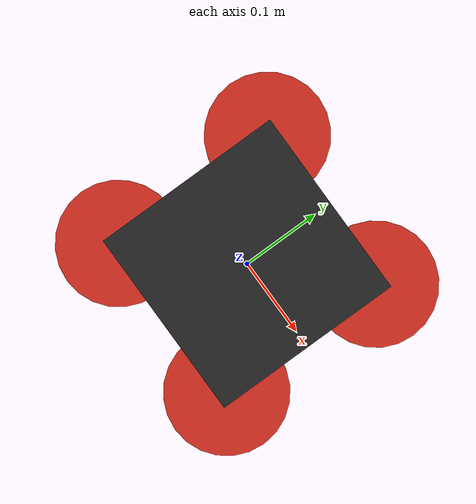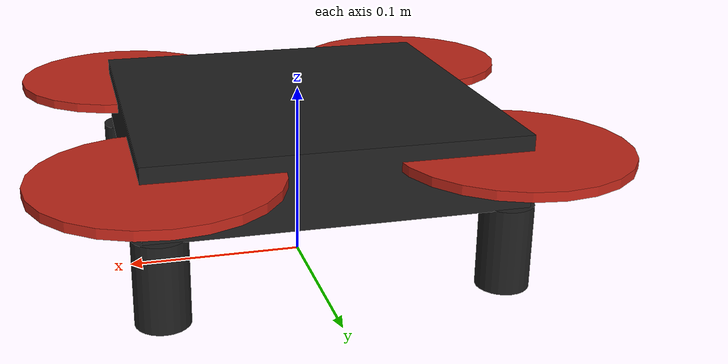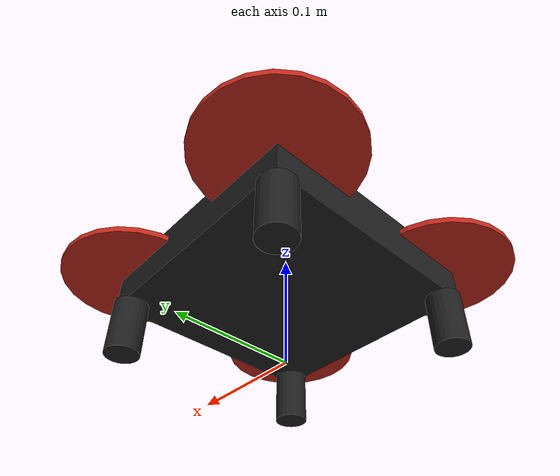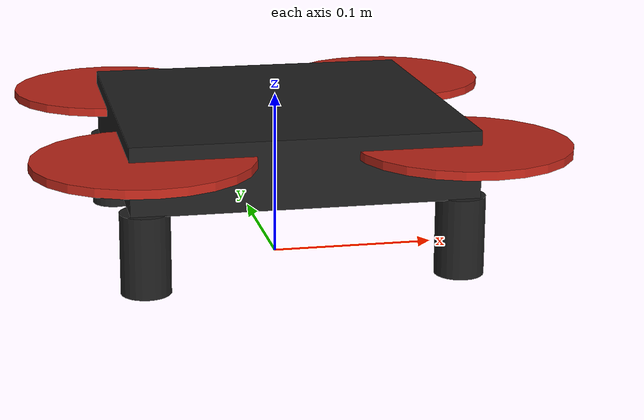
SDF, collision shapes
<?xml version="1.0" encoding="UTF-8"?>
<sdf version="1.9">
  <model name="dd24">
    <pose>0 0 0.06 0 0 0</pose>
    <link name="base_link">
      <inertial>
        <pose>0 0 0.010 0 0 0</pose>
        <mass>1.76</mass>
        <inertia><ixx>0.0082</ixx><ixy>0</ixy><ixz>0</ixz><iyy>0.0099</iyy><iyz>0</iyz><izz>0.0158</izz></inertia>
      </inertial>
      <visual name="bottom_plate">
        <pose>0 0 0 0 0 0</pose>
        <geometry><mesh><uri>model://dd24/meshes/DD24_BottomPlate_GPIO_X_STL.stl</uri><scale>0.001 0.001 0.001</scale></mesh></geometry>
        <material><ambient>0.12 0.12 0.12 1</ambient><diffuse>0.12 0.12 0.12 1</diffuse></material>
      </visual>
      <visual name="top_plate">
        <pose>0 0 0.035 0 0 0</pose>
        <geometry><mesh><uri>model://dd24/meshes/DD24_TopPlate_GPIO_X_STL.stl</uri><scale>0.001 0.001 0.001</scale></mesh></geometry>
        <material><ambient>0.12 0.12 0.12 1</ambient><diffuse>0.12 0.12 0.12 1</diffuse></material>
      </visual>
      <visual name="raspberry_pi">
        <pose>0.005 0 0.046 0 0 0</pose>
        <geometry><box><size>0.085 0.056 0.017</size></box></geometry>
        <material><ambient>0.10 0.45 0.20 1</ambient><diffuse>0.10 0.45 0.20 1</diffuse></material>
      </visual>
      <visual name="hat">
        <pose>0.012 0 0.0595 0 0 0</pose>
        <geometry><box><size>0.065 0.050 0.010</size></box></geometry>
        <material><ambient>1.0 0.65 0.1 1</ambient><diffuse>1.0 0.65 0.1 1</diffuse></material>
      </visual>
      <visual name="battery">
        <pose>-0.05 0 -0.022 0 0 0</pose>
        <geometry><box><size>0.075 0.035 0.034</size></box></geometry>
        <material><ambient>0.15 0.25 0.6 1</ambient><diffuse>0.15 0.25 0.6 1</diffuse></material>
      </visual>
      <visual name="leg_0">
        <pose>0.091 -0.091 -0.0025 1.5708 0 0</pose>
        <geometry><mesh><uri>model://dd24/meshes/DD24_Landing_Gear_STL.stl</uri><scale>0.001 0.001093 0.001</scale></mesh></geometry>
        <material><ambient>0.05 0.05 0.05 1</ambient><diffuse>0.05 0.05 0.05 1</diffuse></material>
      </visual>
      <visual name="leg_1">
        <pose>-0.091 0.091 -0.0025 1.5708 0 0</pose>
        <geometry><mesh><uri>model://dd24/meshes/DD24_Landing_Gear_STL.stl</uri><scale>0.001 0.001093 0.001</scale></mesh></geometry>
        <material><ambient>0.05 0.05 0.05 1</ambient><diffuse>0.05 0.05 0.05 1</diffuse></material>
      </visual>
      <visual name="leg_2">
        <pose>0.091 0.091 -0.0025 1.5708 0 0</pose>
        <geometry><mesh><uri>model://dd24/meshes/DD24_Landing_Gear_STL.stl</uri><scale>0.001 0.001093 0.001</scale></mesh></geometry>
        <material><ambient>0.05 0.05 0.05 1</ambient><diffuse>0.05 0.05 0.05 1</diffuse></material>
      </visual>
      <visual name="leg_3">
        <pose>-0.091 -0.091 -0.0025 1.5708 0 0</pose>
        <geometry><mesh><uri>model://dd24/meshes/DD24_Landing_Gear_STL.stl</uri><scale>0.001 0.001093 0.001</scale></mesh></geometry>
        <material><ambient>0.05 0.05 0.05 1</ambient><diffuse>0.05 0.05 0.05 1</diffuse></material>
      </visual>
      <collision name="body_collision">
        <pose>0 0 0.017 0 0 0</pose>
        <geometry><box><size>0.20 0.20 0.040</size></box></geometry>
      </collision>
      <collision name="leg_0_collision">
        <pose>0.091 -0.091 -0.026 0 0 0</pose>
        <geometry><cylinder><radius>0.0144</radius><length>0.047</length></cylinder></geometry>
        <surface><friction><ode><mu>0.8</mu><mu2>0.8</mu2></ode></friction></surface>
      </collision>
      <collision name="leg_1_collision">
        <pose>-0.091 0.091 -0.026 0 0 0</pose>
        <geometry><cylinder><radius>0.0144</radius><length>0.047</length></cylinder></geometry>
        <surface><friction><ode><mu>0.8</mu><mu2>0.8</mu2></ode></friction></surface>
      </collision>
      <collision name="leg_2_collision">
        <pose>0.091 0.091 -0.026 0 0 0</pose>
        <geometry><cylinder><radius>0.0144</radius><length>0.047</length></cylinder></geometry>
        <surface><friction><ode><mu>0.8</mu><mu2>0.8</mu2></ode></friction></surface>
      </collision>
      <collision name="leg_3_collision">
        <pose>-0.091 -0.091 -0.026 0 0 0</pose>
        <geometry><cylinder><radius>0.0144</radius><length>0.047</length></cylinder></geometry>
        <surface><friction><ode><mu>0.8</mu><mu2>0.8</mu2></ode></friction></surface>
      </collision>
      <sensor name="air_pressure_sensor" type="air_pressure">
        <always_on>1</always_on>
        <update_rate>50</update_rate>
        <air_pressure><pressure><noise type="gaussian"><mean>0</mean><stddev>0.01</stddev></noise></pressure></air_pressure>
      </sensor>
      <sensor name="imu_sensor" type="imu">
        <pose>0 0 0.012 0 0 0</pose>
        <always_on>1</always_on>
        <update_rate>250</update_rate>
        <imu>
          <angular_velocity>
            <x><noise type="gaussian"><mean>0</mean><stddev>0.00018665</stddev><dynamic_bias_stddev>3.8785e-05</dynamic_bias_stddev><dynamic_bias_correlation_time>1000</dynamic_bias_correlation_time></noise></x>
            <y><noise type="gaussian"><mean>0</mean><stddev>0.00018665</stddev><dynamic_bias_stddev>3.8785e-05</dynamic_bias_stddev><dynamic_bias_correlation_time>1000</dynamic_bias_correlation_time></noise></y>
            <z><noise type="gaussian"><mean>0</mean><stddev>0.00018665</stddev><dynamic_bias_stddev>3.8785e-05</dynamic_bias_stddev><dynamic_bias_correlation_time>1000</dynamic_bias_correlation_time></noise></z>
          </angular_velocity>
          <linear_acceleration>
            <x><noise type="gaussian"><mean>0</mean><stddev>0.00186</stddev><dynamic_bias_stddev>0.006</dynamic_bias_stddev><dynamic_bias_correlation_time>300</dynamic_bias_correlation_time></noise></x>
            <y><noise type="gaussian"><mean>0</mean><stddev>0.00186</stddev><dynamic_bias_stddev>0.006</dynamic_bias_stddev><dynamic_bias_correlation_time>300</dynamic_bias_correlation_time></noise></y>
            <z><noise type="gaussian"><mean>0</mean><stddev>0.00186</stddev><dynamic_bias_stddev>0.006</dynamic_bias_stddev><dynamic_bias_correlation_time>300</dynamic_bias_correlation_time></noise></z>
          </linear_acceleration>
        </imu>
      </sensor>
      <sensor name="navsat_sensor" type="navsat">
        <always_on>1</always_on>
        <update_rate>30</update_rate>
      </sensor>
      <!-- ToF inferior (VL53): un rayo hacia abajo, 0.04-3.6 m, ~30 Hz -->
      <sensor name="tof_bottom" type="gpu_lidar">
        <pose>0 0 -0.006 0 1.5708 0</pose>
        <always_on>1</always_on>
        <update_rate>30</update_rate>
        <topic>dd24/tof_bottom/scan</topic>
        <lidar>
          <scan><horizontal><samples>1</samples><resolution>1</resolution><min_angle>0</min_angle><max_angle>0</max_angle></horizontal></scan>
          <range><min>0.04</min><max>3.6</max><resolution>0.001</resolution></range>
          <noise><type>gaussian</type><mean>0</mean><stddev>0.003</stddev></noise>
        </lidar>
      </sensor>
    </link>
    <link name="rotor_0">
      <pose>0.091 -0.091 0.003 0 0 0</pose>
      <inertial>
        <mass>0.008</mass>
        <inertia><ixx>2.0e-06</ixx><ixy>0</ixy><ixz>0</ixz><iyy>1.5e-05</iyy><iyz>0</iyz><izz>1.6e-05</izz></inertia>
      </inertial>
      <visual name="motor"><pose>0 0 0.006 0 0 0</pose><geometry><cylinder><radius>0.0135</radius><length>0.018</length></cylinder></geometry>
        <material><ambient>0.75 0.15 0.10 1</ambient><diffuse>0.75 0.15 0.10 1</diffuse></material></visual>
      <visual name="prop">
        <pose>0 0 0 0 0 0</pose>
        <geometry><mesh><uri>model://dd24/meshes/DD24_CCW_prop_STL.stl</uri><scale>0.001 0.001 0.001</scale></mesh></geometry>
        <material><ambient>1.0 0.92 0.0 1</ambient><diffuse>1.0 0.92 0.0 1</diffuse></material>
      </visual>
      <collision name="rotor_0_collision">
        <pose>0 0 0.023 0 0 0</pose>
        <geometry><cylinder><radius>0.063</radius><length>0.005</length></cylinder></geometry>
        <surface><contact><collide_without_contact>1</collide_without_contact></contact></surface>
      </collision>
    </link>
    <joint name="rotor_0_joint" type="revolute">
      <parent>base_link</parent>
      <child>rotor_0</child>
      <axis><xyz>0 0 1</xyz><limit><lower>-1e+16</lower><upper>1e+16</upper></limit>
        <dynamics><spring_reference>0</spring_reference><spring_stiffness>0</spring_stiffness></dynamics></axis>
    </joint>
    <link name="rotor_1">
      <pose>-0.091 0.091 0.003 0 0 0</pose>
      <inertial>
        <mass>0.008</mass>
        <inertia><ixx>2.0e-06</ixx><ixy>0</ixy><ixz>0</ixz><iyy>1.5e-05</iyy><iyz>0</iyz><izz>1.6e-05</izz></inertia>
      </inertial>
      <visual name="motor"><pose>0 0 0.006 0 0 0</pose><geometry><cylinder><radius>0.0135</radius><length>0.018</length></cylinder></geometry>
        <material><ambient>0.75 0.15 0.10 1</ambient><diffuse>0.75 0.15 0.10 1</diffuse></material></visual>
      <visual name="prop">
        <pose>0 0 0 0 0 0</pose>
        <geometry><mesh><uri>model://dd24/meshes/DD24_CCW_prop_STL.stl</uri><scale>0.001 0.001 0.001</scale></mesh></geometry>
        <material><ambient>1.0 0.92 0.0 1</ambient><diffuse>1.0 0.92 0.0 1</diffuse></material>
      </visual>
      <collision name="rotor_1_collision">
        <pose>0 0 0.023 0 0 0</pose>
        <geometry><cylinder><radius>0.063</radius><length>0.005</length></cylinder></geometry>
        <surface><contact><collide_without_contact>1</collide_without_contact></contact></surface>
      </collision>
    </link>
    <joint name="rotor_1_joint" type="revolute">
      <parent>base_link</parent>
      <child>rotor_1</child>
      <axis><xyz>0 0 1</xyz><limit><lower>-1e+16</lower><upper>1e+16</upper></limit>
        <dynamics><spring_reference>0</spring_reference><spring_stiffness>0</spring_stiffness></dynamics></axis>
    </joint>
    <link name="rotor_2">
      <pose>0.091 0.091 0.003 0 0 0</pose>
      <inertial>
        <mass>0.008</mass>
        <inertia><ixx>2.0e-06</ixx><ixy>0</ixy><ixz>0</ixz><iyy>1.5e-05</iyy><iyz>0</iyz><izz>1.6e-05</izz></inertia>
      </inertial>
      <visual name="motor"><pose>0 0 0.006 0 0 0</pose><geometry><cylinder><radius>0.0135</radius><length>0.018</length></cylinder></geometry>
        <material><ambient>0.75 0.15 0.10 1</ambient><diffuse>0.75 0.15 0.10 1</diffuse></material></visual>
      <visual name="prop">
        <pose>0 0 0 0 0 0</pose>
        <geometry><mesh><uri>model://dd24/meshes/DD24_CW_prop_STL.stl</uri><scale>0.001 0.001 0.001</scale></mesh></geometry>
        <material><ambient>1.0 0.92 0.0 1</ambient><diffuse>1.0 0.92 0.0 1</diffuse></material>
      </visual>
      <collision name="rotor_2_collision">
        <pose>0 0 0.023 0 0 0</pose>
        <geometry><cylinder><radius>0.063</radius><length>0.005</length></cylinder></geometry>
        <surface><contact><collide_without_contact>1</collide_without_contact></contact></surface>
      </collision>
    </link>
    <joint name="rotor_2_joint" type="revolute">
      <parent>base_link</parent>
      <child>rotor_2</child>
      <axis><xyz>0 0 1</xyz><limit><lower>-1e+16</lower><upper>1e+16</upper></limit>
        <dynamics><spring_reference>0</spring_reference><spring_stiffness>0</spring_stiffness></dynamics></axis>
    </joint>
    <link name="rotor_3">
      <pose>-0.091 -0.091 0.003 0 0 0</pose>
      <inertial>
        <mass>0.008</mass>
        <inertia><ixx>2.0e-06</ixx><ixy>0</ixy><ixz>0</ixz><iyy>1.5e-05</iyy><iyz>0</iyz><izz>1.6e-05</izz></inertia>
      </inertial>
      <visual name="motor"><pose>0 0 0.006 0 0 0</pose><geometry><cylinder><radius>0.0135</radius><length>0.018</length></cylinder></geometry>
        <material><ambient>0.75 0.15 0.10 1</ambient><diffuse>0.75 0.15 0.10 1</diffuse></material></visual>
      <visual name="prop">
        <pose>0 0 0 0 0 0</pose>
        <geometry><mesh><uri>model://dd24/meshes/DD24_CW_prop_STL.stl</uri><scale>0.001 0.001 0.001</scale></mesh></geometry>
        <material><ambient>1.0 0.92 0.0 1</ambient><diffuse>1.0 0.92 0.0 1</diffuse></material>
      </visual>
      <collision name="rotor_3_collision">
        <pose>0 0 0.023 0 0 0</pose>
        <geometry><cylinder><radius>0.063</radius><length>0.005</length></cylinder></geometry>
        <surface><contact><collide_without_contact>1</collide_without_contact></contact></surface>
      </collision>
    </link>
    <joint name="rotor_3_joint" type="revolute">
      <parent>base_link</parent>
      <child>rotor_3</child>
      <axis><xyz>0 0 1</xyz><limit><lower>-1e+16</lower><upper>1e+16</upper></limit>
        <dynamics><spring_reference>0</spring_reference><spring_stiffness>0</spring_stiffness></dynamics></axis>
    </joint>
    <plugin filename="gz-sim-multicopter-motor-model-system" name="gz::sim::systems::MulticopterMotorModel">
      <jointName>rotor_0_joint</jointName>
      <linkName>rotor_0</linkName>
      <turningDirection>ccw</turningDirection>
      <timeConstantUp>0.0125</timeConstantUp>
      <timeConstantDown>0.025</timeConstantDown>
      <maxRotVelocity>2400.0</maxRotVelocity>
      <motorConstant>2.477e-06</motorConstant>
      <momentConstant>0.016</momentConstant>
      <commandSubTopic>command/motor_speed</commandSubTopic>
      <motorNumber>0</motorNumber>
      <rotorDragCoefficient>8.06428e-05</rotorDragCoefficient>
      <rollingMomentCoefficient>1e-06</rollingMomentCoefficient>
      <rotorVelocitySlowdownSim>10</rotorVelocitySlowdownSim>
      <motorType>velocity</motorType>
    </plugin>
    <plugin filename="gz-sim-multicopter-motor-model-system" name="gz::sim::systems::MulticopterMotorModel">
      <jointName>rotor_1_joint</jointName>
      <linkName>rotor_1</linkName>
      <turningDirection>ccw</turningDirection>
      <timeConstantUp>0.0125</timeConstantUp>
      <timeConstantDown>0.025</timeConstantDown>
      <maxRotVelocity>2400.0</maxRotVelocity>
      <motorConstant>2.477e-06</motorConstant>
      <momentConstant>0.016</momentConstant>
      <commandSubTopic>command/motor_speed</commandSubTopic>
      <motorNumber>1</motorNumber>
      <rotorDragCoefficient>8.06428e-05</rotorDragCoefficient>
      <rollingMomentCoefficient>1e-06</rollingMomentCoefficient>
      <rotorVelocitySlowdownSim>10</rotorVelocitySlowdownSim>
      <motorType>velocity</motorType>
    </plugin>
    <plugin filename="gz-sim-multicopter-motor-model-system" name="gz::sim::systems::MulticopterMotorModel">
      <jointName>rotor_2_joint</jointName>
      <linkName>rotor_2</linkName>
      <turningDirection>cw</turningDirection>
      <timeConstantUp>0.0125</timeConstantUp>
      <timeConstantDown>0.025</timeConstantDown>
      <maxRotVelocity>2400.0</maxRotVelocity>
      <motorConstant>2.477e-06</motorConstant>
      <momentConstant>0.016</momentConstant>
      <commandSubTopic>command/motor_speed</commandSubTopic>
      <motorNumber>2</motorNumber>
      <rotorDragCoefficient>8.06428e-05</rotorDragCoefficient>
      <rollingMomentCoefficient>1e-06</rollingMomentCoefficient>
      <rotorVelocitySlowdownSim>10</rotorVelocitySlowdownSim>
      <motorType>velocity</motorType>
    </plugin>
    <plugin filename="gz-sim-multicopter-motor-model-system" name="gz::sim::systems::MulticopterMotorModel">
      <jointName>rotor_3_joint</jointName>
      <linkName>rotor_3</linkName>
      <turningDirection>cw</turningDirection>
      <timeConstantUp>0.0125</timeConstantUp>
      <timeConstantDown>0.025</timeConstantDown>
      <maxRotVelocity>2400.0</maxRotVelocity>
      <motorConstant>2.477e-06</motorConstant>
      <momentConstant>0.016</momentConstant>
      <commandSubTopic>command/motor_speed</commandSubTopic>
      <motorNumber>3</motorNumber>
      <rotorDragCoefficient>8.06428e-05</rotorDragCoefficient>
      <rollingMomentCoefficient>1e-06</rollingMomentCoefficient>
      <rotorVelocitySlowdownSim>10</rotorVelocitySlowdownSim>
      <motorType>velocity</motorType>
    </plugin>
  </model>
</sdf>
